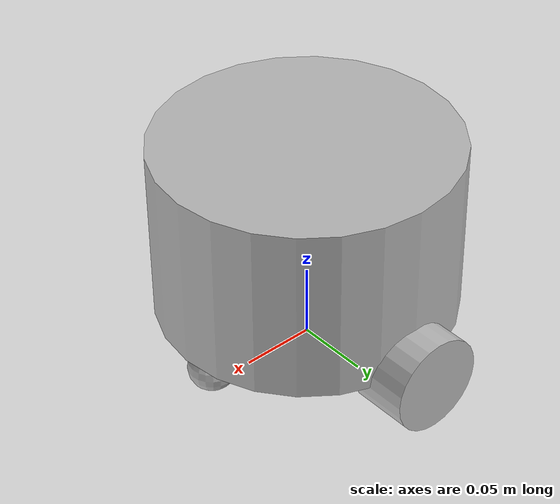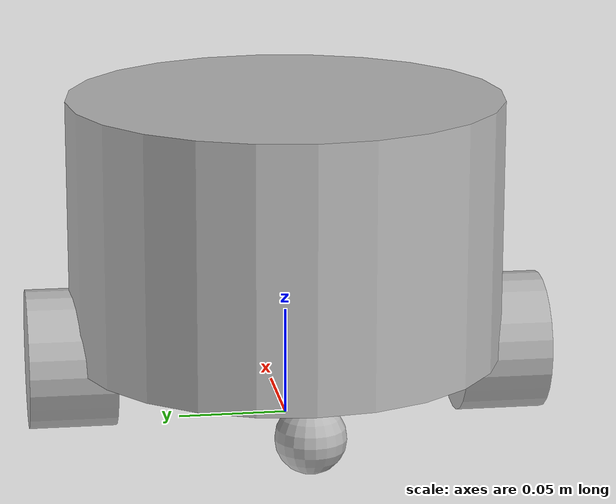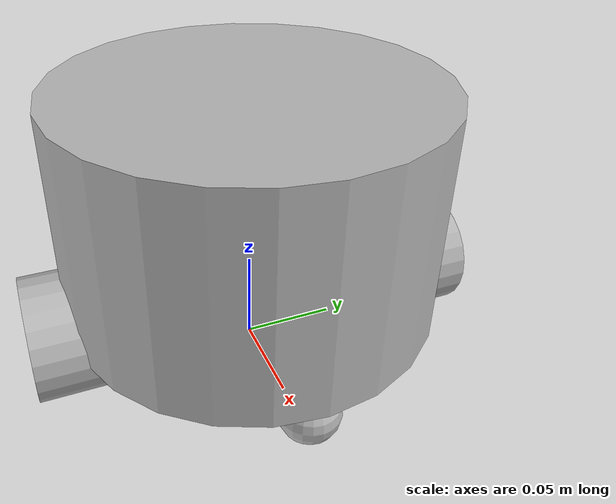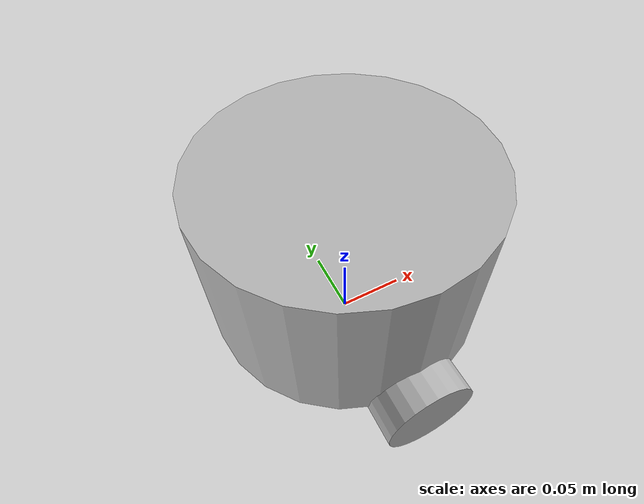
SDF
<sdf version='1.7'>
  <model name='HnuRobot'>
    <plugin name="my_robot_plugin" filename="libd_drive_car.so">
      <wheelSeparation>0.2</wheelSeparation>
    </plugin>
    <link name='base_footprint'>
      <inertial>
        <pose>0 0 0.084091 0 -0 0</pose>
        <mass>1.1</mass>
        <inertia>
          <ixx>0.00423533</ixx>
          <ixy>0</ixy>
          <ixz>0</ixz>
          <iyy>0.00487533</iyy>
          <iyz>0</iyz>
          <izz>0.00565024</izz>
        </inertia>
      </inertial>
      <collision name='base_footprint_fixed_joint_lump__base_link_collision'>
        <pose>0 0 0.091 0 -0 0</pose>
        <geometry>
          <cylinder>
            <length>0.12</length>
            <radius>0.1</radius>
          </cylinder>
        </geometry>
      </collision>
      <collision name='base_footprint_fixed_joint_lump__back_caster_link_collision_1'>
        <pose>-0.08 0 0.015 0 -0 0</pose>
        <geometry>
          <sphere>
            <radius>0.016</radius>
          </sphere>
        </geometry>
        <surface>
          <contact>
            <ode>
              <kp>1e+09</kp>
              <kd>1</kd>
            </ode>
          </contact>
          <friction>
            <ode>
              <mu>0</mu>
              <mu2>0</mu2>
            </ode>
          </friction>
        </surface>
      </collision>
      <collision name='base_footprint_fixed_joint_lump__front_caster_link_collision_2'>
        <pose>0.08 0 0.015 0 -0 0</pose>
        <geometry>
          <sphere>
            <radius>0.016</radius>
          </sphere>
        </geometry>
        <surface>
          <contact>
            <ode>
              <kp>1e+09</kp>
              <kd>1</kd>
            </ode>
          </contact>
          <friction>
            <ode>
              <mu>0</mu>
              <mu2>0</mu2>
            </ode>
          </friction>
        </surface>
      </collision>
      <visual name='base_footprint_fixed_joint_lump__base_link_visual'>
        <pose>0 0 0.091 0 -0 0</pose>
        <geometry>
          <cylinder>
            <length>0.12</length>
            <radius>0.1</radius>
          </cylinder>
        </geometry>
      </visual>
      <visual name='base_footprint_fixed_joint_lump__back_caster_link_visual_1'>
        <pose>-0.08 0 0.015 0 -0 0</pose>
        <geometry>
          <sphere>
            <radius>0.016</radius>
          </sphere>
        </geometry>
      </visual>
      <visual name='base_footprint_fixed_joint_lump__front_caster_link_visual_2'>
        <pose>0.08 0 0.015 0 -0 0</pose>
        <geometry>
          <sphere>
            <radius>0.016</radius>
          </sphere>
        </geometry>
      </visual>
    </link>
    <joint name='left_wheel_joint' type='revolute'>
      <pose relative_to='base_footprint'>0 0.1 0.031 0 -0 0</pose>
      <parent>base_footprint</parent>
      <child>left_wheel_link</child>
      <axis>
        <xyz>0 1 0</xyz>
        <limit>
          <lower>-1e+16</lower>
          <upper>1e+16</upper>
        </limit>
        <dynamics>
          <spring_reference>0</spring_reference>
          <spring_stiffness>0</spring_stiffness>
        </dynamics>
      </axis>
    </joint>
    <link name='left_wheel_link'>
      <pose relative_to='left_wheel_joint'>0 0 0 0 -0 0</pose>
      <inertial>
        <pose>0 0 0 0 -0 0</pose>
        <mass>0.05</mass>
        <inertia>
          <ixx>1.94667e-05</ixx>
          <ixy>0</ixy>
          <ixz>0</ixz>
          <iyy>1.94667e-05</iyy>
          <iyz>0</iyz>
          <izz>2.56e-05</izz>
        </inertia>
      </inertial>
      <collision name='left_wheel_link_collision'>
        <pose>0 0 0 1.57079 -0 0</pose>
        <geometry>
          <cylinder>
            <length>0.04</length>
            <radius>0.032</radius>
          </cylinder>
        </geometry>
        <surface>
          <contact>
            <ode>
              <kp>1e+09</kp>
              <kd>1</kd>
            </ode>
          </contact>
          <friction>
            <ode>
              <mu>20</mu>
              <mu2>20</mu2>
            </ode>
          </friction>
        </surface>
      </collision>
      <visual name='left_wheel_link_visual'>
        <pose>0 0 0 1.57079 -0 0</pose>
        <geometry>
          <cylinder>
            <length>0.04</length>
            <radius>0.032</radius>
          </cylinder>
        </geometry>
      </visual>
    </link>
    <joint name='right_wheel_joint' type='revolute'>
      <pose relative_to='base_footprint'>0 -0.1 0.031 0 -0 0</pose>
      <parent>base_footprint</parent>
      <child>right_wheel_link</child>
      <axis>
        <xyz>0 1 0</xyz>
        <limit>
          <lower>-1e+16</lower>
          <upper>1e+16</upper>
        </limit>
        <dynamics>
          <spring_reference>0</spring_reference>
          <spring_stiffness>0</spring_stiffness>
        </dynamics>
      </axis>
    </joint>
    <link name='right_wheel_link'>
      <pose relative_to='right_wheel_joint'>0 0 0 0 -0 0</pose>
      <inertial>
        <pose>0 0 0 0 -0 0</pose>
        <mass>0.05</mass>
        <inertia>
          <ixx>1.94667e-05</ixx>
          <ixy>0</ixy>
          <ixz>0</ixz>
          <iyy>1.94667e-05</iyy>
          <iyz>0</iyz>
          <izz>2.56e-05</izz>
        </inertia>
      </inertial>
      <collision name='right_wheel_link_collision'>
        <pose>0 0 0 1.57079 -0 0</pose>
        <geometry>
          <cylinder>
            <length>0.04</length>
            <radius>0.032</radius>
          </cylinder>
        </geometry>
        <surface>
          <contact>
            <ode>
              <kp>1e+09</kp>
              <kd>1</kd>
            </ode>
          </contact>
          <friction>
            <ode>
              <mu>20</mu>
              <mu2>20</mu2>
            </ode>
          </friction>
        </surface>
      </collision>
      <visual name='right_wheel_link_visual'>
        <pose>0 0 0 1.57079 -0 0</pose>
        <geometry>
          <cylinder>
            <length>0.04</length>
            <radius>0.032</radius>
          </cylinder>
        </geometry>
      </visual>
    </link>
  </model>
</sdf>
